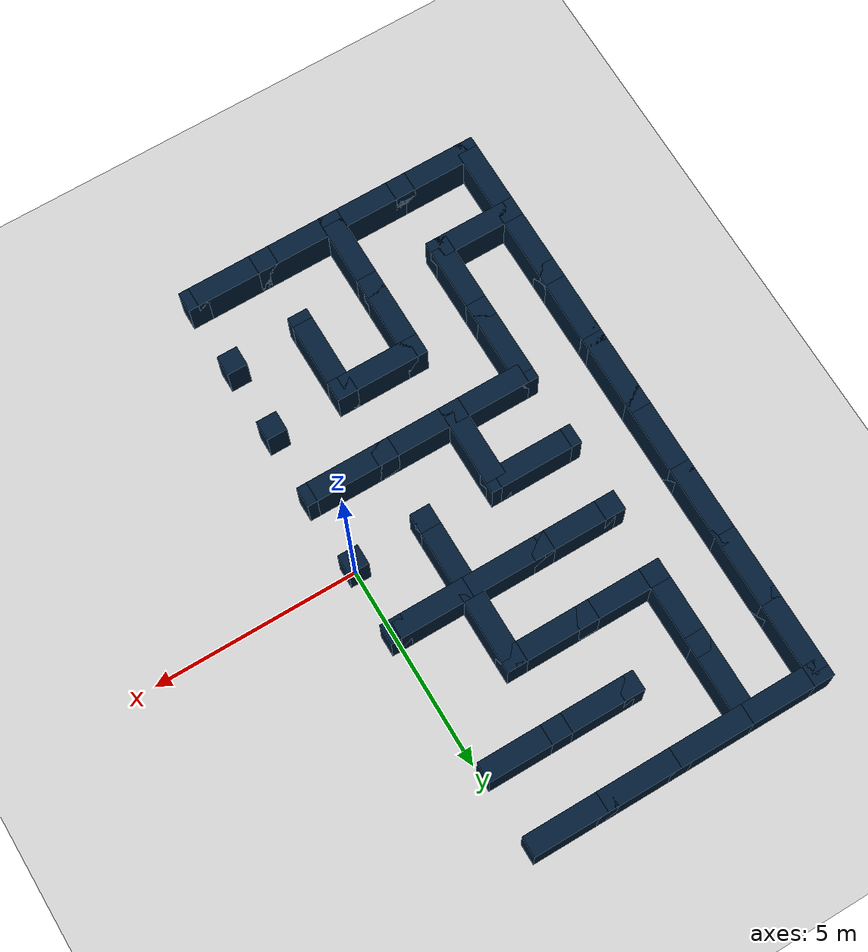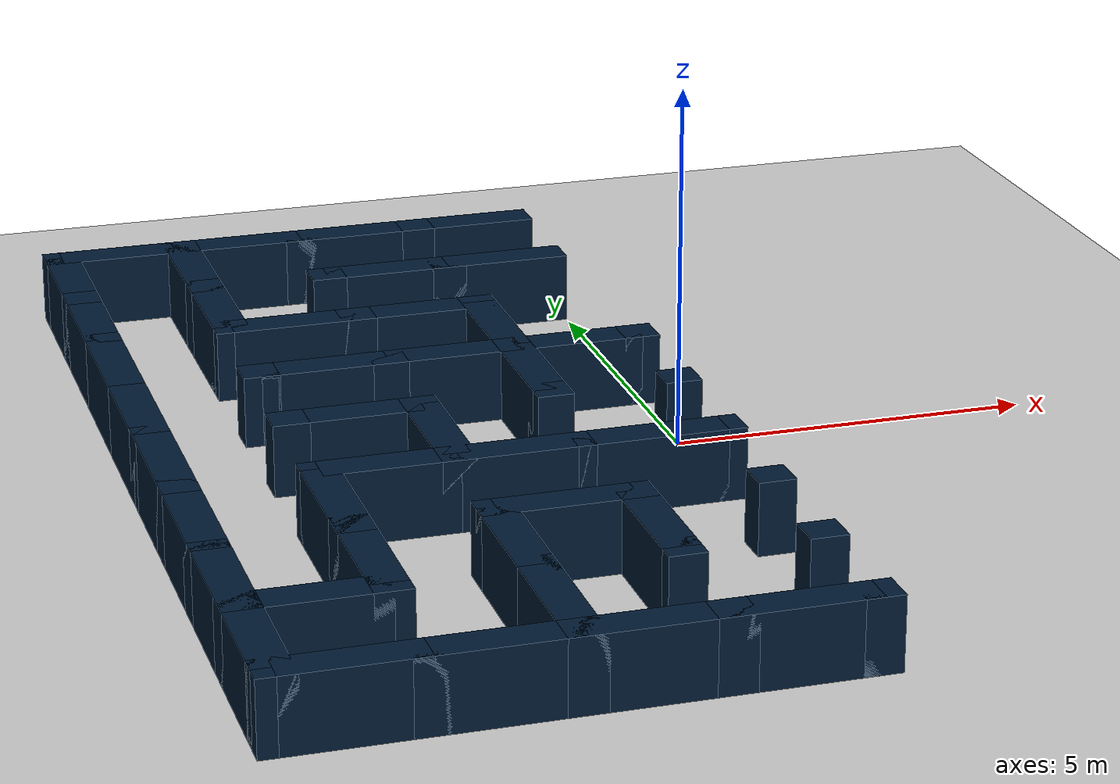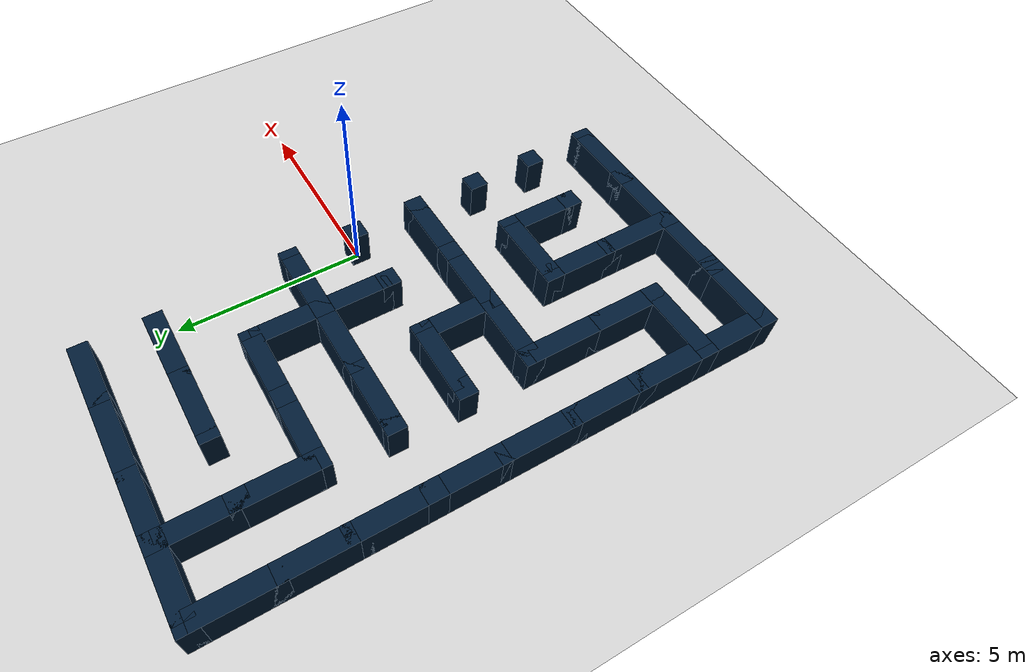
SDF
<sdf version="1.8">
 <world name="maze_8x8">
  <model name="ground_plane">
   <static>1</static>
   <link name="link">
    <collision name="collision">
     <geometry><plane><normal>0 0 1</normal><size>28.80 28.80</size></plane></geometry>
    </collision>
    <visual name="visual">
     <geometry><plane><normal>0 0 1</normal><size>28.80 28.80</size></plane></geometry>
     <material>
      <ambient>0.8 0.8 0.8 1</ambient>
      <diffuse>0.8 0.8 0.8 1</diffuse>
      <specular>0.8 0.8 0.8 1</specular>
     </material>
     <plugin name="__default__" filename="__default__"/>
    </visual>
   </link>
   <plugin name="__default__" filename="__default__"/>
  </model>
  <model name="obstacles">
   <pose>0 0 0.50 0 0 0</pose>
   <static>true</static>
   <link name="corner_block_1">
    <pose>-7.20 -7.20 0 0 0 0</pose>
    <static>true</static>
    <collision name="corner_block_1_collision">
     <geometry><box><size>0.50 0.50 1.00</size></box></geometry>
    </collision>
    <visual name="corner_block_1_visual">
     <geometry><box><size>0.50 0.50 1.00</size></box></geometry>
     <material>
      <ambient>0.1 0.1 0.1 1</ambient>
      <diffuse>0 0.1 0.2 1</diffuse>
      <specular>0 0.01 0.05 1</specular>
     </material>
    </visual>
   </link>
   <link name="corner_block_2">
    <pose>-5.40 -7.20 0 0 0 0</pose>
    <static>true</static>
    <collision name="corner_block_2_collision">
     <geometry><box><size>0.50 0.50 1.00</size></box></geometry>
    </collision>
    <visual name="corner_block_2_visual">
     <geometry><box><size>0.50 0.50 1.00</size></box></geometry>
     <material>
      <ambient>0.1 0.1 0.1 1</ambient>
      <diffuse>0 0.1 0.2 1</diffuse>
      <specular>0 0.01 0.05 1</specular>
     </material>
    </visual>
   </link>
   <link name="corner_block_3">
    <pose>-3.60 -7.20 0 0 0 0</pose>
    <static>true</static>
    <collision name="corner_block_3_collision">
     <geometry><box><size>0.50 0.50 1.00</size></box></geometry>
    </collision>
    <visual name="corner_block_3_visual">
     <geometry><box><size>0.50 0.50 1.00</size></box></geometry>
     <material>
      <ambient>0.1 0.1 0.1 1</ambient>
      <diffuse>0 0.1 0.2 1</diffuse>
      <specular>0 0.01 0.05 1</specular>
     </material>
    </visual>
   </link>
   <link name="corner_block_4">
    <pose>-1.80 -7.20 0 0 0 0</pose>
    <static>true</static>
    <collision name="corner_block_4_collision">
     <geometry><box><size>0.50 0.50 1.00</size></box></geometry>
    </collision>
    <visual name="corner_block_4_visual">
     <geometry><box><size>0.50 0.50 1.00</size></box></geometry>
     <material>
      <ambient>0.1 0.1 0.1 1</ambient>
      <diffuse>0 0.1 0.2 1</diffuse>
      <specular>0 0.01 0.05 1</specular>
     </material>
    </visual>
   </link>
   <link name="corner_block_5">
    <pose>0.00 -7.20 0 0 0 0</pose>
    <static>true</static>
    <collision name="corner_block_5_collision">
     <geometry><box><size>0.50 0.50 1.00</size></box></geometry>
    </collision>
    <visual name="corner_block_5_visual">
     <geometry><box><size>0.50 0.50 1.00</size></box></geometry>
     <material>
      <ambient>0.1 0.1 0.1 1</ambient>
      <diffuse>0 0.1 0.2 1</diffuse>
      <specular>0 0.01 0.05 1</specular>
     </material>
    </visual>
   </link>
   <link name="corner_block_10">
    <pose>-7.20 -5.40 0 0 0 0</pose>
    <static>true</static>
    <collision name="corner_block_10_collision">
     <geometry><box><size>0.50 0.50 1.00</size></box></geometry>
    </collision>
    <visual name="corner_block_10_visual">
     <geometry><box><size>0.50 0.50 1.00</size></box></geometry>
     <material>
      <ambient>0.1 0.1 0.1 1</ambient>
      <diffuse>0 0.1 0.2 1</diffuse>
      <specular>0 0.01 0.05 1</specular>
     </material>
    </visual>
   </link>
   <link name="corner_block_11">
    <pose>-5.40 -5.40 0 0 0 0</pose>
    <static>true</static>
    <collision name="corner_block_11_collision">
     <geometry><box><size>0.50 0.50 1.00</size></box></geometry>
    </collision>
    <visual name="corner_block_11_visual">
     <geometry><box><size>0.50 0.50 1.00</size></box></geometry>
     <material>
      <ambient>0.1 0.1 0.1 1</ambient>
      <diffuse>0 0.1 0.2 1</diffuse>
      <specular>0 0.01 0.05 1</specular>
     </material>
    </visual>
   </link>
   <link name="corner_block_12">
    <pose>-3.60 -5.40 0 0 0 0</pose>
    <static>true</static>
    <collision name="corner_block_12_collision">
     <geometry><box><size>0.50 0.50 1.00</size></box></geometry>
    </collision>
    <visual name="corner_block_12_visual">
     <geometry><box><size>0.50 0.50 1.00</size></box></geometry>
     <material>
      <ambient>0.1 0.1 0.1 1</ambient>
      <diffuse>0 0.1 0.2 1</diffuse>
      <specular>0 0.01 0.05 1</specular>
     </material>
    </visual>
   </link>
   <link name="corner_block_13">
    <pose>-1.80 -5.40 0 0 0 0</pose>
    <static>true</static>
    <collision name="corner_block_13_collision">
     <geometry><box><size>0.50 0.50 1.00</size></box></geometry>
    </collision>
    <visual name="corner_block_13_visual">
     <geometry><box><size>0.50 0.50 1.00</size></box></geometry>
     <material>
      <ambient>0.1 0.1 0.1 1</ambient>
      <diffuse>0 0.1 0.2 1</diffuse>
      <specular>0 0.01 0.05 1</specular>
     </material>
    </visual>
   </link>
   <link name="corner_block_14">
    <pose>0.00 -5.40 0 0 0 0</pose>
    <static>true</static>
    <collision name="corner_block_14_collision">
     <geometry><box><size>0.50 0.50 1.00</size></box></geometry>
    </collision>
    <visual name="corner_block_14_visual">
     <geometry><box><size>0.50 0.50 1.00</size></box></geometry>
     <material>
      <ambient>0.1 0.1 0.1 1</ambient>
      <diffuse>0 0.1 0.2 1</diffuse>
      <specular>0 0.01 0.05 1</specular>
     </material>
    </visual>
   </link>
   <link name="corner_block_19">
    <pose>-7.20 -3.60 0 0 0 0</pose>
    <static>true</static>
    <collision name="corner_block_19_collision">
     <geometry><box><size>0.50 0.50 1.00</size></box></geometry>
    </collision>
    <visual name="corner_block_19_visual">
     <geometry><box><size>0.50 0.50 1.00</size></box></geometry>
     <material>
      <ambient>0.1 0.1 0.1 1</ambient>
      <diffuse>0 0.1 0.2 1</diffuse>
      <specular>0 0.01 0.05 1</specular>
     </material>
    </visual>
   </link>
   <link name="corner_block_20">
    <pose>-5.40 -3.60 0 0 0 0</pose>
    <static>true</static>
    <collision name="corner_block_20_collision">
     <geometry><box><size>0.50 0.50 1.00</size></box></geometry>
    </collision>
    <visual name="corner_block_20_visual">
     <geometry><box><size>0.50 0.50 1.00</size></box></geometry>
     <material>
      <ambient>0.1 0.1 0.1 1</ambient>
      <diffuse>0 0.1 0.2 1</diffuse>
      <specular>0 0.01 0.05 1</specular>
     </material>
    </visual>
   </link>
   <link name="corner_block_21">
    <pose>-3.60 -3.60 0 0 0 0</pose>
    <static>true</static>
    <collision name="corner_block_21_collision">
     <geometry><box><size>0.50 0.50 1.00</size></box></geometry>
    </collision>
    <visual name="corner_block_21_visual">
     <geometry><box><size>0.50 0.50 1.00</size></box></geometry>
     <material>
      <ambient>0.1 0.1 0.1 1</ambient>
      <diffuse>0 0.1 0.2 1</diffuse>
      <specular>0 0.01 0.05 1</specular>
     </material>
    </visual>
   </link>
   <link name="corner_block_22">
    <pose>-1.80 -3.60 0 0 0 0</pose>
    <static>true</static>
    <collision name="corner_block_22_collision">
     <geometry><box><size>0.50 0.50 1.00</size></box></geometry>
    </collision>
    <visual name="corner_block_22_visual">
     <geometry><box><size>0.50 0.50 1.00</size></box></geometry>
     <material>
      <ambient>0.1 0.1 0.1 1</ambient>
      <diffuse>0 0.1 0.2 1</diffuse>
      <specular>0 0.01 0.05 1</specular>
     </material>
    </visual>
   </link>
   <link name="corner_block_23">
    <pose>0.00 -3.60 0 0 0 0</pose>
    <static>true</static>
    <collision name="corner_block_23_collision">
     <geometry><box><size>0.50 0.50 1.00</size></box></geometry>
    </collision>
    <visual name="corner_block_23_visual">
     <geometry><box><size>0.50 0.50 1.00</size></box></geometry>
     <material>
      <ambient>0.1 0.1 0.1 1</ambient>
      <diffuse>0 0.1 0.2 1</diffuse>
      <specular>0 0.01 0.05 1</specular>
     </material>
    </visual>
   </link>
   <link name="corner_block_28">
    <pose>-7.20 -1.80 0 0 0 0</pose>
    <static>true</static>
    <collision name="corner_block_28_collision">
     <geometry><box><size>0.50 0.50 1.00</size></box></geometry>
    </collision>
    <visual name="corner_block_28_visual">
     <geometry><box><size>0.50 0.50 1.00</size></box></geometry>
     <material>
      <ambient>0.1 0.1 0.1 1</ambient>
      <diffuse>0 0.1 0.2 1</diffuse>
      <specular>0 0.01 0.05 1</specular>
     </material>
    </visual>
   </link>
   <link name="corner_block_29">
    <pose>-5.40 -1.80 0 0 0 0</pose>
    <static>true</static>
    <collision name="corner_block_29_collision">
     <geometry><box><size>0.50 0.50 1.00</size></box></geometry>
    </collision>
    <visual name="corner_block_29_visual">
     <geometry><box><size>0.50 0.50 1.00</size></box></geometry>
     <material>
      <ambient>0.1 0.1 0.1 1</ambient>
      <diffuse>0 0.1 0.2 1</diffuse>
      <specular>0 0.01 0.05 1</specular>
     </material>
    </visual>
   </link>
   <link name="corner_block_30">
    <pose>-3.60 -1.80 0 0 0 0</pose>
    <static>true</static>
    <collision name="corner_block_30_collision">
     <geometry><box><size>0.50 0.50 1.00</size></box></geometry>
    </collision>
    <visual name="corner_block_30_visual">
     <geometry><box><size>0.50 0.50 1.00</size></box></geometry>
     <material>
      <ambient>0.1 0.1 0.1 1</ambient>
      <diffuse>0 0.1 0.2 1</diffuse>
      <specular>0 0.01 0.05 1</specular>
     </material>
    </visual>
   </link>
   <link name="corner_block_31">
    <pose>-1.80 -1.80 0 0 0 0</pose>
    <static>true</static>
    <collision name="corner_block_31_collision">
     <geometry><box><size>0.50 0.50 1.00</size></box></geometry>
    </collision>
    <visual name="corner_block_31_visual">
     <geometry><box><size>0.50 0.50 1.00</size></box></geometry>
     <material>
      <ambient>0.1 0.1 0.1 1</ambient>
      <diffuse>0 0.1 0.2 1</diffuse>
      <specular>0 0.01 0.05 1</specular>
     </material>
    </visual>
   </link>
   <link name="corner_block_32">
    <pose>0.00 -1.80 0 0 0 0</pose>
    <static>true</static>
    <collision name="corner_block_32_collision">
     <geometry><box><size>0.50 0.50 1.00</size></box></geometry>
    </collision>
    <visual name="corner_block_32_visual">
     <geometry><box><size>0.50 0.50 1.00</size></box></geometry>
     <material>
      <ambient>0.1 0.1 0.1 1</ambient>
      <diffuse>0 0.1 0.2 1</diffuse>
      <specular>0 0.01 0.05 1</specular>
     </material>
    </visual>
   </link>
   <link name="corner_block_37">
    <pose>-7.20 0.00 0 0 0 0</pose>
    <static>true</static>
    <collision name="corner_block_37_collision">
     <geometry><box><size>0.50 0.50 1.00</size></box></geometry>
    </collision>
    <visual name="corner_block_37_visual">
     <geometry><box><size>0.50 0.50 1.00</size></box></geometry>
     <material>
      <ambient>0.1 0.1 0.1 1</ambient>
      <diffuse>0 0.1 0.2 1</diffuse>
      <specular>0 0.01 0.05 1</specular>
     </material>
    </visual>
   </link>
   <link name="corner_block_38">
    <pose>-5.40 0.00 0 0 0 0</pose>
    <static>true</static>
    <collision name="corner_block_38_collision">
     <geometry><box><size>0.50 0.50 1.00</size></box></geometry>
    </collision>
    <visual name="corner_block_38_visual">
     <geometry><box><size>0.50 0.50 1.00</size></box></geometry>
     <material>
      <ambient>0.1 0.1 0.1 1</ambient>
      <diffuse>0 0.1 0.2 1</diffuse>
      <specular>0 0.01 0.05 1</specular>
     </material>
    </visual>
   </link>
   <link name="corner_block_39">
    <pose>-3.60 0.00 0 0 0 0</pose>
    <static>true</static>
    <collision name="corner_block_39_collision">
     <geometry><box><size>0.50 0.50 1.00</size></box></geometry>
    </collision>
    <visual name="corner_block_39_visual">
     <geometry><box><size>0.50 0.50 1.00</size></box></geometry>
     <material>
      <ambient>0.1 0.1 0.1 1</ambient>
      <diffuse>0 0.1 0.2 1</diffuse>
      <specular>0 0.01 0.05 1</specular>
     </material>
    </visual>
   </link>
   <link name="corner_block_40">
    <pose>-1.80 0.00 0 0 0 0</pose>
    <static>true</static>
    <collision name="corner_block_40_collision">
     <geometry><box><size>0.50 0.50 1.00</size></box></geometry>
    </collision>
    <visual name="corner_block_40_visual">
     <geometry><box><size>0.50 0.50 1.00</size></box></geometry>
     <material>
      <ambient>0.1 0.1 0.1 1</ambient>
      <diffuse>0 0.1 0.2 1</diffuse>
      <specular>0 0.01 0.05 1</specular>
     </material>
    </visual>
   </link>
   <link name="corner_block_41">
    <static>true</static>
    <collision name="corner_block_41_collision">
     <geometry><box><size>0.50 0.50 1.00</size></box></geometry>
    </collision>
    <visual name="corner_block_41_visual">
     <geometry><box><size>0.50 0.50 1.00</size></box></geometry>
     <material>
      <ambient>0.1 0.1 0.1 1</ambient>
      <diffuse>0 0.1 0.2 1</diffuse>
      <specular>0 0.01 0.05 1</specular>
     </material>
    </visual>
   </link>
   <link name="corner_block_46">
    <pose>-7.20 1.80 0 0 0 0</pose>
    <static>true</static>
    <collision name="corner_block_46_collision">
     <geometry><box><size>0.50 0.50 1.00</size></box></geometry>
    </collision>
    <visual name="corner_block_46_visual">
     <geometry><box><size>0.50 0.50 1.00</size></box></geometry>
     <material>
      <ambient>0.1 0.1 0.1 1</ambient>
      <diffuse>0 0.1 0.2 1</diffuse>
      <specular>0 0.01 0.05 1</specular>
     </material>
    </visual>
   </link>
   <link name="corner_block_47">
    <pose>-5.40 1.80 0 0 0 0</pose>
    <static>true</static>
    <collision name="corner_block_47_collision">
     <geometry><box><size>0.50 0.50 1.00</size></box></geometry>
    </collision>
    <visual name="corner_block_47_visual">
     <geometry><box><size>0.50 0.50 1.00</size></box></geometry>
     <material>
      <ambient>0.1 0.1 0.1 1</ambient>
      <diffuse>0 0.1 0.2 1</diffuse>
      <specular>0 0.01 0.05 1</specular>
     </material>
    </visual>
   </link>
   <link name="corner_block_48">
    <pose>-3.60 1.80 0 0 0 0</pose>
    <static>true</static>
    <collision name="corner_block_48_collision">
     <geometry><box><size>0.50 0.50 1.00</size></box></geometry>
    </collision>
    <visual name="corner_block_48_visual">
     <geometry><box><size>0.50 0.50 1.00</size></box></geometry>
     <material>
      <ambient>0.1 0.1 0.1 1</ambient>
      <diffuse>0 0.1 0.2 1</diffuse>
      <specular>0 0.01 0.05 1</specular>
     </material>
    </visual>
   </link>
   <link name="corner_block_49">
    <pose>-1.80 1.80 0 0 0 0</pose>
    <static>true</static>
    <collision name="corner_block_49_collision">
     <geometry><box><size>0.50 0.50 1.00</size></box></geometry>
    </collision>
    <visual name="corner_block_49_visual">
     <geometry><box><size>0.50 0.50 1.00</size></box></geometry>
     <material>
      <ambient>0.1 0.1 0.1 1</ambient>
      <diffuse>0 0.1 0.2 1</diffuse>
      <specular>0 0.01 0.05 1</specular>
     </material>
    </visual>
   </link>
   <link name="corner_block_50">
    <pose>0.00 1.80 0 0 0 0</pose>
    <static>true</static>
    <collision name="corner_block_50_collision">
     <geometry><box><size>0.50 0.50 1.00</size></box></geometry>
    </collision>
    <visual name="corner_block_50_visual">
     <geometry><box><size>0.50 0.50 1.00</size></box></geometry>
     <material>
      <ambient>0.1 0.1 0.1 1</ambient>
      <diffuse>0 0.1 0.2 1</diffuse>
      <specular>0 0.01 0.05 1</specular>
     </material>
    </visual>
   </link>
   <link name="corner_block_55">
    <pose>-7.20 3.60 0 0 0 0</pose>
    <static>true</static>
    <collision name="corner_block_55_collision">
     <geometry><box><size>0.50 0.50 1.00</size></box></geometry>
    </collision>
    <visual name="corner_block_55_visual">
     <geometry><box><size>0.50 0.50 1.00</size></box></geometry>
     <material>
      <ambient>0.1 0.1 0.1 1</ambient>
      <diffuse>0 0.1 0.2 1</diffuse>
      <specular>0 0.01 0.05 1</specular>
     </material>
    </visual>
   </link>
   <link name="corner_block_56">
    <pose>-5.40 3.60 0 0 0 0</pose>
    <static>true</static>
    <collision name="corner_block_56_collision">
     <geometry><box><size>0.50 0.50 1.00</size></box></geometry>
    </collision>
    <visual name="corner_block_56_visual">
     <geometry><box><size>0.50 0.50 1.00</size></box></geometry>
     <material>
      <ambient>0.1 0.1 0.1 1</ambient>
      <diffuse>0 0.1 0.2 1</diffuse>
      <specular>0 0.01 0.05 1</specular>
     </material>
    </visual>
   </link>
   <link name="corner_block_57">
    <pose>-3.60 3.60 0 0 0 0</pose>
    <static>true</static>
    <collision name="corner_block_57_collision">
     <geometry><box><size>0.50 0.50 1.00</size></box></geometry>
    </collision>
    <visual name="corner_block_57_visual">
     <geometry><box><size>0.50 0.50 1.00</size></box></geometry>
     <material>
      <ambient>0.1 0.1 0.1 1</ambient>
      <diffuse>0 0.1 0.2 1</diffuse>
      <specular>0 0.01 0.05 1</specular>
     </material>
    </visual>
   </link>
   <link name="corner_block_58">
    <pose>-1.80 3.60 0 0 0 0</pose>
    <static>true</static>
    <collision name="corner_block_58_collision">
     <geometry><box><size>0.50 0.50 1.00</size></box></geometry>
    </collision>
    <visual name="corner_block_58_visual">
     <geometry><box><size>0.50 0.50 1.00</size></box></geometry>
     <material>
      <ambient>0.1 0.1 0.1 1</ambient>
      <diffuse>0 0.1 0.2 1</diffuse>
      <specular>0 0.01 0.05 1</specular>
     </material>
    </visual>
   </link>
   <link name="corner_block_64">
    <pose>-7.20 5.40 0 0 0 0</pose>
    <static>true</static>
    <collision name="corner_block_64_collision">
     <geometry><box><size>0.50 0.50 1.00</size></box></geometry>
    </collision>
    <visual name="corner_block_64_visual">
     <geometry><box><size>0.50 0.50 1.00</size></box></geometry>
     <material>
      <ambient>0.1 0.1 0.1 1</ambient>
      <diffuse>0 0.1 0.2 1</diffuse>
      <specular>0 0.01 0.05 1</specular>
     </material>
    </visual>
   </link>
   <link name="corner_block_65">
    <pose>-5.40 5.40 0 0 0 0</pose>
    <static>true</static>
    <collision name="corner_block_65_collision">
     <geometry><box><size>0.50 0.50 1.00</size></box></geometry>
    </collision>
    <visual name="corner_block_65_visual">
     <geometry><box><size>0.50 0.50 1.00</size></box></geometry>
     <material>
      <ambient>0.1 0.1 0.1 1</ambient>
      <diffuse>0 0.1 0.2 1</diffuse>
      <specular>0 0.01 0.05 1</specular>
     </material>
    </visual>
   </link>
   <link name="corner_block_66">
    <pose>-3.60 5.40 0 0 0 0</pose>
    <static>true</static>
    <collision name="corner_block_66_collision">
     <geometry><box><size>0.50 0.50 1.00</size></box></geometry>
    </collision>
    <visual name="corner_block_66_visual">
     <geometry><box><size>0.50 0.50 1.00</size></box></geometry>
     <material>
      <ambient>0.1 0.1 0.1 1</ambient>
      <diffuse>0 0.1 0.2 1</diffuse>
      <specular>0 0.01 0.05 1</specular>
     </material>
    </visual>
   </link>
   <link name="corner_block_67">
    <pose>-1.80 5.40 0 0 0 0</pose>
    <static>true</static>
    <collision name="corner_block_67_collision">
     <geometry><box><size>0.50 0.50 1.00</size></box></geometry>
    </collision>
    <visual name="corner_block_67_visual">
     <geometry><box><size>0.50 0.50 1.00</size></box></geometry>
     <material>
      <ambient>0.1 0.1 0.1 1</ambient>
      <diffuse>0 0.1 0.2 1</diffuse>
      <specular>0 0.01 0.05 1</specular>
     </material>
    </visual>
   </link>
   <link name="corner_block_73">
    <pose>-7.20 7.20 0 0 0 0</pose>
    <static>true</static>
    <collision name="corner_block_73_collision">
     <geometry><box><size>0.50 0.50 1.00</size></box></geometry>
    </collision>
    <visual name="corner_block_73_visual">
     <geometry><box><size>0.50 0.50 1.00</size></box></geometry>
     <material>
      <ambient>0.1 0.1 0.1 1</ambient>
      <diffuse>0 0.1 0.2 1</diffuse>
      <specular>0 0.01 0.05 1</specular>
     </material>
    </visual>
   </link>
   <link name="corner_block_74">
    <pose>-5.40 7.20 0 0 0 0</pose>
    <static>true</static>
    <collision name="corner_block_74_collision">
     <geometry><box><size>0.50 0.50 1.00</size></box></geometry>
    </collision>
    <visual name="corner_block_74_visual">
     <geometry><box><size>0.50 0.50 1.00</size></box></geometry>
     <material>
      <ambient>0.1 0.1 0.1 1</ambient>
      <diffuse>0 0.1 0.2 1</diffuse>
      <specular>0 0.01 0.05 1</specular>
     </material>
    </visual>
   </link>
   <link name="corner_block_75">
    <pose>-3.60 7.20 0 0 0 0</pose>
    <static>true</static>
    <collision name="corner_block_75_collision">
     <geometry><box><size>0.50 0.50 1.00</size></box></geometry>
    </collision>
    <visual name="corner_block_75_visual">
     <geometry><box><size>0.50 0.50 1.00</size></box></geometry>
     <material>
      <ambient>0.1 0.1 0.1 1</ambient>
      <diffuse>0 0.1 0.2 1</diffuse>
      <specular>0 0.01 0.05 1</specular>
     </material>
    </visual>
   </link>
   <link name="corner_block_76">
    <pose>-1.80 7.20 0 0 0 0</pose>
    <static>true</static>
    <collision name="corner_block_76_collision">
     <geometry><box><size>0.50 0.50 1.00</size></box></geometry>
    </collision>
    <visual name="corner_block_76_visual">
     <geometry><box><size>0.50 0.50 1.00</size></box></geometry>
     <material>
      <ambient>0.1 0.1 0.1 1</ambient>
      <diffuse>0 0.1 0.2 1</diffuse>
      <specular>0 0.01 0.05 1</specular>
     </material>
    </visual>
   </link>
   <link name="wall82">
    <pose>-6.30 -7.20 0 0 0 0</pose>
    <static>true</static>
    <collision name="wall82_collision"><geometry><box><size>1.80 0.50 1.00</size></box></geometry></collision>
    <visual name="wall82_visual">
     <geometry><box><size>1.80 0.50 1.00</size></box></geometry>
     <material>
      <ambient>0.1 0.1 0.1 1</ambient>
      <diffuse>0 0.1 0.2 1</diffuse>
      <specular>0 0.01 0.05 1</specular>
     </material>
    </visual>
   </link>
   <link name="wall83">
    <pose>-4.50 -7.20 0 0 0 0</pose>
    <static>true</static>
    <collision name="wall83_collision"><geometry><box><size>1.80 0.50 1.00</size></box></geometry></collision>
    <visual name="wall83_visual">
     <geometry><box><size>1.80 0.50 1.00</size></box></geometry>
     <material>
      <ambient>0.1 0.1 0.1 1</ambient>
      <diffuse>0 0.1 0.2 1</diffuse>
      <specular>0 0.01 0.05 1</specular>
     </material>
    </visual>
   </link>
   <link name="wall84">
    <pose>-2.70 -7.20 0 0 0 0</pose>
    <static>true</static>
    <collision name="wall84_collision"><geometry><box><size>1.80 0.50 1.00</size></box></geometry></collision>
    <visual name="wall84_visual">
     <geometry><box><size>1.80 0.50 1.00</size></box></geometry>
     <material>
      <ambient>0.1 0.1 0.1 1</ambient>
      <diffuse>0 0.1 0.2 1</diffuse>
      <specular>0 0.01 0.05 1</specular>
     </material>
    </visual>
   </link>
   <link name="wall85">
    <pose>-0.90 -7.20 0 0 0 0</pose>
    <static>true</static>
    <collision name="wall85_collision"><geometry><box><size>1.80 0.50 1.00</size></box></geometry></collision>
    <visual name="wall85_visual">
     <geometry><box><size>1.80 0.50 1.00</size></box></geometry>
     <material>
      <ambient>0.1 0.1 0.1 1</ambient>
      <diffuse>0 0.1 0.2 1</diffuse>
      <specular>0 0.01 0.05 1</specular>
     </material>
    </visual>
   </link>
   <link name="wall90">
    <pose>-6.30 -5.40 0 0 0 0</pose>
    <static>true</static>
    <collision name="wall90_collision"><geometry><box><size>1.80 0.50 1.00</size></box></geometry></collision>
    <visual name="wall90_visual">
     <geometry><box><size>1.80 0.50 1.00</size></box></geometry>
     <material>
      <ambient>0.1 0.1 0.1 1</ambient>
      <diffuse>0 0.1 0.2 1</diffuse>
      <specular>0 0.01 0.05 1</specular>
     </material>
    </visual>
   </link>
   <link name="wall93">
    <pose>-2.70 -3.60 0 0 0 0</pose>
    <static>true</static>
    <collision name="wall93_collision"><geometry><box><size>1.80 0.50 1.00</size></box></geometry></collision>
    <visual name="wall93_visual">
     <geometry><box><size>1.80 0.50 1.00</size></box></geometry>
     <material>
      <ambient>0.1 0.1 0.1 1</ambient>
      <diffuse>0 0.1 0.2 1</diffuse>
      <specular>0 0.01 0.05 1</specular>
     </material>
    </visual>
   </link>
   <link name="wall94">
    <pose>-4.50 -1.80 0 0 0 0</pose>
    <static>true</static>
    <collision name="wall94_collision"><geometry><box><size>1.80 0.50 1.00</size></box></geometry></collision>
    <visual name="wall94_visual">
     <geometry><box><size>1.80 0.50 1.00</size></box></geometry>
     <material>
      <ambient>0.1 0.1 0.1 1</ambient>
      <diffuse>0 0.1 0.2 1</diffuse>
      <specular>0 0.01 0.05 1</specular>
     </material>
    </visual>
   </link>
   <link name="wall95">
    <pose>-2.70 -1.80 0 0 0 0</pose>
    <static>true</static>
    <collision name="wall95_collision"><geometry><box><size>1.80 0.50 1.00</size></box></geometry></collision>
    <visual name="wall95_visual">
     <geometry><box><size>1.80 0.50 1.00</size></box></geometry>
     <material>
      <ambient>0.1 0.1 0.1 1</ambient>
      <diffuse>0 0.1 0.2 1</diffuse>
      <specular>0 0.01 0.05 1</specular>
     </material>
    </visual>
   </link>
   <link name="wall96">
    <pose>-0.90 -1.80 0 0 0 0</pose>
    <static>true</static>
    <collision name="wall96_collision"><geometry><box><size>1.80 0.50 1.00</size></box></geometry></collision>
    <visual name="wall96_visual">
     <geometry><box><size>1.80 0.50 1.00</size></box></geometry>
     <material>
      <ambient>0.1 0.1 0.1 1</ambient>
      <diffuse>0 0.1 0.2 1</diffuse>
      <specular>0 0.01 0.05 1</specular>
     </material>
    </visual>
   </link>
   <link name="wall97">
    <pose>-4.50 0.00 0 0 0 0</pose>
    <static>true</static>
    <collision name="wall97_collision"><geometry><box><size>1.80 0.50 1.00</size></box></geometry></collision>
    <visual name="wall97_visual">
     <geometry><box><size>1.80 0.50 1.00</size></box></geometry>
     <material>
      <ambient>0.1 0.1 0.1 1</ambient>
      <diffuse>0 0.1 0.2 1</diffuse>
      <specular>0 0.01 0.05 1</specular>
     </material>
    </visual>
   </link>
   <link name="wall101">
    <pose>-4.50 1.80 0 0 0 0</pose>
    <static>true</static>
    <collision name="wall101_collision"><geometry><box><size>1.80 0.50 1.00</size></box></geometry></collision>
    <visual name="wall101_visual">
     <geometry><box><size>1.80 0.50 1.00</size></box></geometry>
     <material>
      <ambient>0.1 0.1 0.1 1</ambient>
      <diffuse>0 0.1 0.2 1</diffuse>
      <specular>0 0.01 0.05 1</specular>
     </material>
    </visual>
   </link>
   <link name="wall102">
    <pose>-2.70 1.80 0 0 0 0</pose>
    <static>true</static>
    <collision name="wall102_collision"><geometry><box><size>1.80 0.50 1.00</size></box></geometry></collision>
    <visual name="wall102_visual">
     <geometry><box><size>1.80 0.50 1.00</size></box></geometry>
     <material>
      <ambient>0.1 0.1 0.1 1</ambient>
      <diffuse>0 0.1 0.2 1</diffuse>
      <specular>0 0.01 0.05 1</specular>
     </material>
    </visual>
   </link>
   <link name="wall103">
    <pose>-0.90 1.80 0 0 0 0</pose>
    <static>true</static>
    <collision name="wall103_collision"><geometry><box><size>1.80 0.50 1.00</size></box></geometry></collision>
    <visual name="wall103_visual">
     <geometry><box><size>1.80 0.50 1.00</size></box></geometry>
     <material>
      <ambient>0.1 0.1 0.1 1</ambient>
      <diffuse>0 0.1 0.2 1</diffuse>
      <specular>0 0.01 0.05 1</specular>
     </material>
    </visual>
   </link>
   <link name="wall104">
    <pose>-4.50 3.60 0 0 0 0</pose>
    <static>true</static>
    <collision name="wall104_collision"><geometry><box><size>1.80 0.50 1.00</size></box></geometry></collision>
    <visual name="wall104_visual">
     <geometry><box><size>1.80 0.50 1.00</size></box></geometry>
     <material>
      <ambient>0.1 0.1 0.1 1</ambient>
      <diffuse>0 0.1 0.2 1</diffuse>
      <specular>0 0.01 0.05 1</specular>
     </material>
    </visual>
   </link>
   <link name="wall105">
    <pose>-2.70 3.60 0 0 0 0</pose>
    <static>true</static>
    <collision name="wall105_collision"><geometry><box><size>1.80 0.50 1.00</size></box></geometry></collision>
    <visual name="wall105_visual">
     <geometry><box><size>1.80 0.50 1.00</size></box></geometry>
     <material>
      <ambient>0.1 0.1 0.1 1</ambient>
      <diffuse>0 0.1 0.2 1</diffuse>
      <specular>0 0.01 0.05 1</specular>
     </material>
    </visual>
   </link>
   <link name="wall109">
    <pose>-2.70 5.40 0 0 0 0</pose>
    <static>true</static>
    <collision name="wall109_collision"><geometry><box><size>1.80 0.50 1.00</size></box></geometry></collision>
    <visual name="wall109_visual">
     <geometry><box><size>1.80 0.50 1.00</size></box></geometry>
     <material>
      <ambient>0.1 0.1 0.1 1</ambient>
      <diffuse>0 0.1 0.2 1</diffuse>
      <specular>0 0.01 0.05 1</specular>
     </material>
    </visual>
   </link>
   <link name="wall110">
    <pose>-0.90 5.40 0 0 0 0</pose>
    <static>true</static>
    <collision name="wall110_collision"><geometry><box><size>1.80 0.50 1.00</size></box></geometry></collision>
    <visual name="wall110_visual">
     <geometry><box><size>1.80 0.50 1.00</size></box></geometry>
     <material>
      <ambient>0.1 0.1 0.1 1</ambient>
      <diffuse>0 0.1 0.2 1</diffuse>
      <specular>0 0.01 0.05 1</specular>
     </material>
    </visual>
   </link>
   <link name="wall112">
    <pose>-6.30 7.20 0 0 0 0</pose>
    <static>true</static>
    <collision name="wall112_collision"><geometry><box><size>1.80 0.50 1.00</size></box></geometry></collision>
    <visual name="wall112_visual">
     <geometry><box><size>1.80 0.50 1.00</size></box></geometry>
     <material>
      <ambient>0.1 0.1 0.1 1</ambient>
      <diffuse>0 0.1 0.2 1</diffuse>
      <specular>0 0.01 0.05 1</specular>
     </material>
    </visual>
   </link>
   <link name="wall113">
    <pose>-4.50 7.20 0 0 0 0</pose>
    <static>true</static>
    <collision name="wall113_collision"><geometry><box><size>1.80 0.50 1.00</size></box></geometry></collision>
    <visual name="wall113_visual">
     <geometry><box><size>1.80 0.50 1.00</size></box></geometry>
     <material>
      <ambient>0.1 0.1 0.1 1</ambient>
      <diffuse>0 0.1 0.2 1</diffuse>
      <specular>0 0.01 0.05 1</specular>
     </material>
    </visual>
   </link>
   <link name="wall114">
    <pose>-2.70 7.20 0 0 0 0</pose>
    <static>true</static>
    <collision name="wall114_collision"><geometry><box><size>1.80 0.50 1.00</size></box></geometry></collision>
    <visual name="wall114_visual">
     <geometry><box><size>1.80 0.50 1.00</size></box></geometry>
     <material>
      <ambient>0.1 0.1 0.1 1</ambient>
      <diffuse>0 0.1 0.2 1</diffuse>
      <specular>0 0.01 0.05 1</specular>
     </material>
    </visual>
   </link>
   <link name="wall115">
    <pose>-0.90 7.20 0 0 0 0</pose>
    <static>true</static>
    <collision name="wall115_collision"><geometry><box><size>1.80 0.50 1.00</size></box></geometry></collision>
    <visual name="wall115_visual">
     <geometry><box><size>1.80 0.50 1.00</size></box></geometry>
     <material>
      <ambient>0.1 0.1 0.1 1</ambient>
      <diffuse>0 0.1 0.2 1</diffuse>
      <specular>0 0.01 0.05 1</specular>
     </material>
    </visual>
   </link>
   <link name="wall120">
    <pose>-7.20 -6.30 0 0 0 0</pose>
    <static>true</static>
    <collision name="wall120_collision"><geometry><box><size>0.50 1.80 1.00</size></box></geometry></collision>
    <visual name="wall120_visual">
     <geometry><box><size>0.50 1.80 1.00</size></box></geometry>
     <material>
      <ambient>0.1 0.1 0.1 1</ambient>
      <diffuse>0 0.1 0.2 1</diffuse>
      <specular>0 0.01 0.05 1</specular>
     </material>
    </visual>
   </link>
   <link name="wall121">
    <pose>-3.60 -6.30 0 0 0 0</pose>
    <static>true</static>
    <collision name="wall121_collision"><geometry><box><size>0.50 1.80 1.00</size></box></geometry></collision>
    <visual name="wall121_visual">
     <geometry><box><size>0.50 1.80 1.00</size></box></geometry>
     <material>
      <ambient>0.1 0.1 0.1 1</ambient>
      <diffuse>0 0.1 0.2 1</diffuse>
      <specular>0 0.01 0.05 1</specular>
     </material>
    </visual>
   </link>
   <link name="wall124">
    <pose>-7.20 -4.50 0 0 0 0</pose>
    <static>true</static>
    <collision name="wall124_collision"><geometry><box><size>0.50 1.80 1.00</size></box></geometry></collision>
    <visual name="wall124_visual">
     <geometry><box><size>0.50 1.80 1.00</size></box></geometry>
     <material>
      <ambient>0.1 0.1 0.1 1</ambient>
      <diffuse>0 0.1 0.2 1</diffuse>
      <specular>0 0.01 0.05 1</specular>
     </material>
    </visual>
   </link>
   <link name="wall125">
    <pose>-5.40 -4.50 0 0 0 0</pose>
    <static>true</static>
    <collision name="wall125_collision"><geometry><box><size>0.50 1.80 1.00</size></box></geometry></collision>
    <visual name="wall125_visual">
     <geometry><box><size>0.50 1.80 1.00</size></box></geometry>
     <material>
      <ambient>0.1 0.1 0.1 1</ambient>
      <diffuse>0 0.1 0.2 1</diffuse>
      <specular>0 0.01 0.05 1</specular>
     </material>
    </visual>
   </link>
   <link name="wall126">
    <pose>-3.60 -4.50 0 0 0 0</pose>
    <static>true</static>
    <collision name="wall126_collision"><geometry><box><size>0.50 1.80 1.00</size></box></geometry></collision>
    <visual name="wall126_visual">
     <geometry><box><size>0.50 1.80 1.00</size></box></geometry>
     <material>
      <ambient>0.1 0.1 0.1 1</ambient>
      <diffuse>0 0.1 0.2 1</diffuse>
      <specular>0 0.01 0.05 1</specular>
     </material>
    </visual>
   </link>
   <link name="wall127">
    <pose>-1.80 -4.50 0 0 0 0</pose>
    <static>true</static>
    <collision name="wall127_collision"><geometry><box><size>0.50 1.80 1.00</size></box></geometry></collision>
    <visual name="wall127_visual">
     <geometry><box><size>0.50 1.80 1.00</size></box></geometry>
     <material>
      <ambient>0.1 0.1 0.1 1</ambient>
      <diffuse>0 0.1 0.2 1</diffuse>
      <specular>0 0.01 0.05 1</specular>
     </material>
    </visual>
   </link>
   <link name="wall132">
    <pose>-7.20 -2.70 0 0 0 0</pose>
    <static>true</static>
    <collision name="wall132_collision"><geometry><box><size>0.50 1.80 1.00</size></box></geometry></collision>
    <visual name="wall132_visual">
     <geometry><box><size>0.50 1.80 1.00</size></box></geometry>
     <material>
      <ambient>0.1 0.1 0.1 1</ambient>
      <diffuse>0 0.1 0.2 1</diffuse>
      <specular>0 0.01 0.05 1</specular>
     </material>
    </visual>
   </link>
   <link name="wall133">
    <pose>-5.40 -2.70 0 0 0 0</pose>
    <static>true</static>
    <collision name="wall133_collision"><geometry><box><size>0.50 1.80 1.00</size></box></geometry></collision>
    <visual name="wall133_visual">
     <geometry><box><size>0.50 1.80 1.00</size></box></geometry>
     <material>
      <ambient>0.1 0.1 0.1 1</ambient>
      <diffuse>0 0.1 0.2 1</diffuse>
      <specular>0 0.01 0.05 1</specular>
     </material>
    </visual>
   </link>
   <link name="wall139">
    <pose>-7.20 -0.90 0 0 0 0</pose>
    <static>true</static>
    <collision name="wall139_collision"><geometry><box><size>0.50 1.80 1.00</size></box></geometry></collision>
    <visual name="wall139_visual">
     <geometry><box><size>0.50 1.80 1.00</size></box></geometry>
     <material>
      <ambient>0.1 0.1 0.1 1</ambient>
      <diffuse>0 0.1 0.2 1</diffuse>
      <specular>0 0.01 0.05 1</specular>
     </material>
    </visual>
   </link>
   <link name="wall140">
    <pose>-3.60 -0.90 0 0 0 0</pose>
    <static>true</static>
    <collision name="wall140_collision"><geometry><box><size>0.50 1.80 1.00</size></box></geometry></collision>
    <visual name="wall140_visual">
     <geometry><box><size>0.50 1.80 1.00</size></box></geometry>
     <material>
      <ambient>0.1 0.1 0.1 1</ambient>
      <diffuse>0 0.1 0.2 1</diffuse>
      <specular>0 0.01 0.05 1</specular>
     </material>
    </visual>
   </link>
   <link name="wall144">
    <pose>-7.20 0.90 0 0 0 0</pose>
    <static>true</static>
    <collision name="wall144_collision"><geometry><box><size>0.50 1.80 1.00</size></box></geometry></collision>
    <visual name="wall144_visual">
     <geometry><box><size>0.50 1.80 1.00</size></box></geometry>
     <material>
      <ambient>0.1 0.1 0.1 1</ambient>
      <diffuse>0 0.1 0.2 1</diffuse>
      <specular>0 0.01 0.05 1</specular>
     </material>
    </visual>
   </link>
   <link name="wall145">
    <pose>-1.80 0.90 0 0 0 0</pose>
    <static>true</static>
    <collision name="wall145_collision"><geometry><box><size>0.50 1.80 1.00</size></box></geometry></collision>
    <visual name="wall145_visual">
     <geometry><box><size>0.50 1.80 1.00</size></box></geometry>
     <material>
      <ambient>0.1 0.1 0.1 1</ambient>
      <diffuse>0 0.1 0.2 1</diffuse>
      <specular>0 0.01 0.05 1</specular>
     </material>
    </visual>
   </link>
   <link name="wall149">
    <pose>-7.20 2.70 0 0 0 0</pose>
    <static>true</static>
    <collision name="wall149_collision"><geometry><box><size>0.50 1.80 1.00</size></box></geometry></collision>
    <visual name="wall149_visual">
     <geometry><box><size>0.50 1.80 1.00</size></box></geometry>
     <material>
      <ambient>0.1 0.1 0.1 1</ambient>
      <diffuse>0 0.1 0.2 1</diffuse>
      <specular>0 0.01 0.05 1</specular>
     </material>
    </visual>
   </link>
   <link name="wall150">
    <pose>-1.80 2.70 0 0 0 0</pose>
    <static>true</static>
    <collision name="wall150_collision"><geometry><box><size>0.50 1.80 1.00</size></box></geometry></collision>
    <visual name="wall150_visual">
     <geometry><box><size>0.50 1.80 1.00</size></box></geometry>
     <material>
      <ambient>0.1 0.1 0.1 1</ambient>
      <diffuse>0 0.1 0.2 1</diffuse>
      <specular>0 0.01 0.05 1</specular>
     </material>
    </visual>
   </link>
   <link name="wall154">
    <pose>-7.20 4.50 0 0 0 0</pose>
    <static>true</static>
    <collision name="wall154_collision"><geometry><box><size>0.50 1.80 1.00</size></box></geometry></collision>
    <visual name="wall154_visual">
     <geometry><box><size>0.50 1.80 1.00</size></box></geometry>
     <material>
      <ambient>0.1 0.1 0.1 1</ambient>
      <diffuse>0 0.1 0.2 1</diffuse>
      <specular>0 0.01 0.05 1</specular>
     </material>
    </visual>
   </link>
   <link name="wall155">
    <pose>-5.40 4.50 0 0 0 0</pose>
    <static>true</static>
    <collision name="wall155_collision"><geometry><box><size>0.50 1.80 1.00</size></box></geometry></collision>
    <visual name="wall155_visual">
     <geometry><box><size>0.50 1.80 1.00</size></box></geometry>
     <material>
      <ambient>0.1 0.1 0.1 1</ambient>
      <diffuse>0 0.1 0.2 1</diffuse>
      <specular>0 0.01 0.05 1</specular>
     </material>
    </visual>
   </link>
   <link name="wall159">
    <pose>-7.20 6.30 0 0 0 0</pose>
    <static>true</static>
    <collision name="wall159_collision"><geometry><box><size>0.50 1.80 1.00</size></box></geometry></collision>
    <visual name="wall159_visual">
     <geometry><box><size>0.50 1.80 1.00</size></box></geometry>
     <material>
      <ambient>0.1 0.1 0.1 1</ambient>
      <diffuse>0 0.1 0.2 1</diffuse>
      <specular>0 0.01 0.05 1</specular>
     </material>
    </visual>
   </link>
   <link name="wall160">
    <pose>-5.40 6.30 0 0 0 0</pose>
    <static>true</static>
    <collision name="wall160_collision"><geometry><box><size>0.50 1.80 1.00</size></box></geometry></collision>
    <visual name="wall160_visual">
     <geometry><box><size>0.50 1.80 1.00</size></box></geometry>
     <material>
      <ambient>0.1 0.1 0.1 1</ambient>
      <diffuse>0 0.1 0.2 1</diffuse>
      <specular>0 0.01 0.05 1</specular>
     </material>
    </visual>
   </link>
  </model>
 </world>
</sdf>
